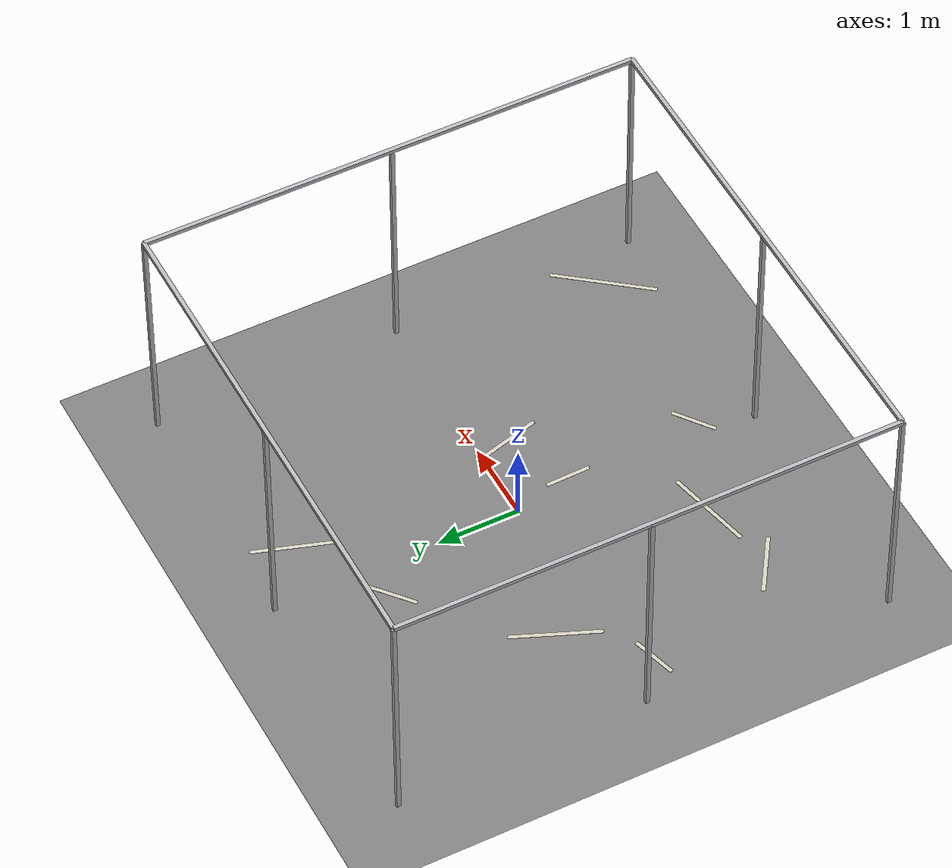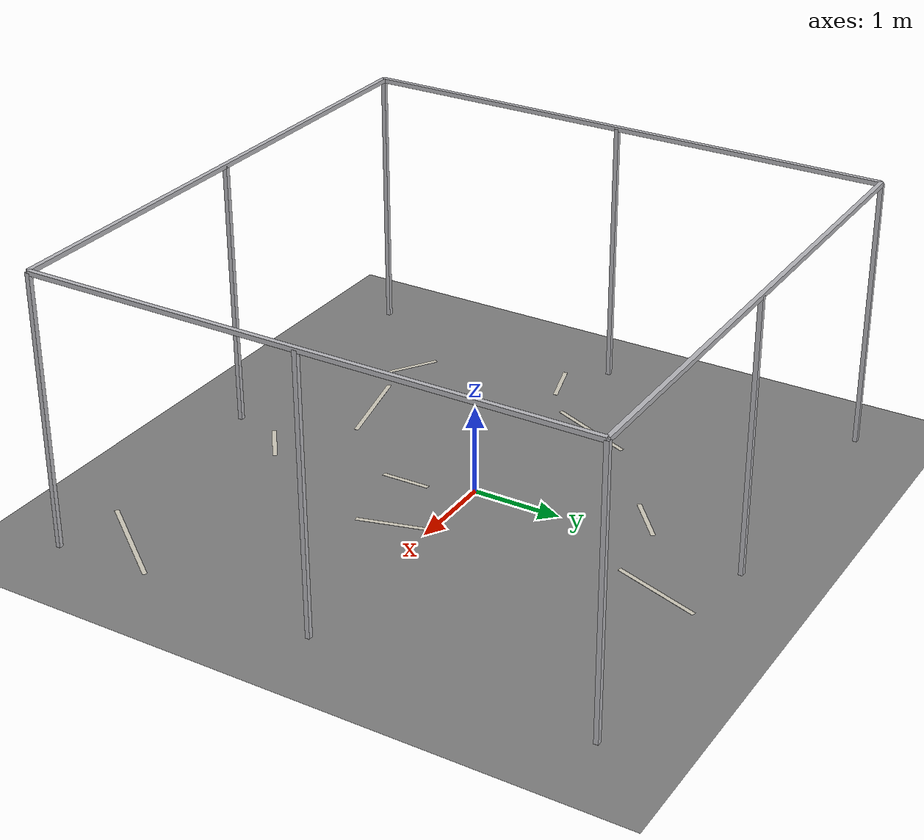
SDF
<sdf version="1.9">
 <world name="ecps295_lowbox_s18">
  <model name="ground_plane">
   <static>true</static>
   <link name="link">
    <collision name="collision">
     <geometry><plane><normal>0 0 1</normal><size>50 50</size></plane></geometry>
    </collision>
    <visual name="visual">
     <geometry><plane><normal>0 0 1</normal><size>50 50</size></plane></geometry>
     <material><ambient>0.5 0.5 0.5 1</ambient><diffuse>0.5 0.5 0.5 1</diffuse></material>
    </visual>
   </link>
  </model>
  <model name="floor_tape">
   <static>true</static>
   <link name="link">
    <visual name="tape0">
     <pose>-0.969 -1.920 0.003 0 0 0.2276</pose>
     <geometry><box><size>1.086 0.050 0.001</size></box></geometry>
     <material><ambient>0.82 0.80 0.74 1</ambient><diffuse>0.82 0.80 0.74 1</diffuse></material>
    </visual>
    <visual name="tape1">
     <pose>0.197 -0.739 0.003 0 0 1.5942</pose>
     <geometry><box><size>0.552 0.050 0.001</size></box></geometry>
     <material><ambient>0.82 0.80 0.74 1</ambient><diffuse>0.82 0.80 0.74 1</diffuse></material>
    </visual>
    <visual name="tape2">
     <pose>-2.544 -0.365 0.003 0 0 0.2850</pose>
     <geometry><box><size>0.563 0.050 0.001</size></box></geometry>
     <material><ambient>0.82 0.80 0.74 1</ambient><diffuse>0.82 0.80 0.74 1</diffuse></material>
    </visual>
    <visual name="tape3">
     <pose>-0.415 1.798 0.003 0 0 0.7013</pose>
     <geometry><box><size>0.611 0.050 0.001</size></box></geometry>
     <material><ambient>0.82 0.80 0.74 1</ambient><diffuse>0.82 0.80 0.74 1</diffuse></material>
    </visual>
    <visual name="tape4">
     <pose>0.701 2.462 0.003 0 0 1.2462</pose>
     <geometry><box><size>1.019 0.050 0.001</size></box></geometry>
     <material><ambient>0.82 0.80 0.74 1</ambient><diffuse>0.82 0.80 0.74 1</diffuse></material>
    </visual>
    <visual name="tape5">
     <pose>2.619 -2.494 0.003 0 0 0.9098</pose>
     <geometry><box><size>1.273 0.050 0.001</size></box></geometry>
     <material><ambient>0.82 0.80 0.74 1</ambient><diffuse>0.82 0.80 0.74 1</diffuse></material>
    </visual>
    <visual name="tape6">
     <pose>-1.957 -2.102 0.003 0 0 2.5639</pose>
     <geometry><box><size>0.778 0.050 0.001</size></box></geometry>
     <material><ambient>0.82 0.80 0.74 1</ambient><diffuse>0.82 0.80 0.74 1</diffuse></material>
    </visual>
    <visual name="tape7">
     <pose>-1.756 0.449 0.003 0 0 1.1699</pose>
     <geometry><box><size>1.075 0.050 0.001</size></box></geometry>
     <material><ambient>0.82 0.80 0.74 1</ambient><diffuse>0.82 0.80 0.74 1</diffuse></material>
    </visual>
    <visual name="tape8">
     <pose>0.263 -2.405 0.003 0 0 0.6470</pose>
     <geometry><box><size>0.554 0.050 0.001</size></box></geometry>
     <material><ambient>0.82 0.80 0.74 1</ambient><diffuse>0.82 0.80 0.74 1</diffuse></material>
    </visual>
    <visual name="tape9">
     <pose>0.992 -0.398 0.003 0 0 1.8396</pose>
     <geometry><box><size>0.783 0.050 0.001</size></box></geometry>
     <material><ambient>0.82 0.80 0.74 1</ambient><diffuse>0.82 0.80 0.74 1</diffuse></material>
    </visual>
   </link>
  </model>
  <model name="cage_frame">
   <static>true</static>
   <link name="link">
    <visual name="post0_0">
     <pose>-3.050 -3.050 1.525 0 0 0.0000</pose>
     <geometry><box><size>0.050 0.050 3.050</size></box></geometry>
     <material><ambient>0.72 0.72 0.74 1</ambient><diffuse>0.72 0.72 0.74 1</diffuse></material>
    </visual>
    <visual name="post0_1">
     <pose>-3.050 0.000 1.525 0 0 0.0000</pose>
     <geometry><box><size>0.050 0.050 3.050</size></box></geometry>
     <material><ambient>0.72 0.72 0.74 1</ambient><diffuse>0.72 0.72 0.74 1</diffuse></material>
    </visual>
    <visual name="post0_2">
     <pose>-3.050 3.050 1.525 0 0 0.0000</pose>
     <geometry><box><size>0.050 0.050 3.050</size></box></geometry>
     <material><ambient>0.72 0.72 0.74 1</ambient><diffuse>0.72 0.72 0.74 1</diffuse></material>
    </visual>
    <visual name="post1_0">
     <pose>0.000 -3.050 1.525 0 0 0.0000</pose>
     <geometry><box><size>0.050 0.050 3.050</size></box></geometry>
     <material><ambient>0.72 0.72 0.74 1</ambient><diffuse>0.72 0.72 0.74 1</diffuse></material>
    </visual>
    <visual name="post1_2">
     <pose>0.000 3.050 1.525 0 0 0.0000</pose>
     <geometry><box><size>0.050 0.050 3.050</size></box></geometry>
     <material><ambient>0.72 0.72 0.74 1</ambient><diffuse>0.72 0.72 0.74 1</diffuse></material>
    </visual>
    <visual name="post2_0">
     <pose>3.050 -3.050 1.525 0 0 0.0000</pose>
     <geometry><box><size>0.050 0.050 3.050</size></box></geometry>
     <material><ambient>0.72 0.72 0.74 1</ambient><diffuse>0.72 0.72 0.74 1</diffuse></material>
    </visual>
    <visual name="post2_1">
     <pose>3.050 0.000 1.525 0 0 0.0000</pose>
     <geometry><box><size>0.050 0.050 3.050</size></box></geometry>
     <material><ambient>0.72 0.72 0.74 1</ambient><diffuse>0.72 0.72 0.74 1</diffuse></material>
    </visual>
    <visual name="post2_2">
     <pose>3.050 3.050 1.525 0 0 0.0000</pose>
     <geometry><box><size>0.050 0.050 3.050</size></box></geometry>
     <material><ambient>0.72 0.72 0.74 1</ambient><diffuse>0.72 0.72 0.74 1</diffuse></material>
    </visual>
    <visual name="railx0">
     <pose>0.000 -3.050 3.050 0 0 0.0000</pose>
     <geometry><box><size>6.100 0.050 0.050</size></box></geometry>
     <material><ambient>0.72 0.72 0.74 1</ambient><diffuse>0.72 0.72 0.74 1</diffuse></material>
    </visual>
    <visual name="raily0">
     <pose>-3.050 0.000 3.050 0 0 0.0000</pose>
     <geometry><box><size>0.050 6.100 0.050</size></box></geometry>
     <material><ambient>0.72 0.72 0.74 1</ambient><diffuse>0.72 0.72 0.74 1</diffuse></material>
    </visual>
    <visual name="railx1">
     <pose>0.000 3.050 3.050 0 0 0.0000</pose>
     <geometry><box><size>6.100 0.050 0.050</size></box></geometry>
     <material><ambient>0.72 0.72 0.74 1</ambient><diffuse>0.72 0.72 0.74 1</diffuse></material>
    </visual>
    <visual name="raily1">
     <pose>3.050 0.000 3.050 0 0 0.0000</pose>
     <geometry><box><size>0.050 6.100 0.050</size></box></geometry>
     <material><ambient>0.72 0.72 0.74 1</ambient><diffuse>0.72 0.72 0.74 1</diffuse></material>
    </visual>
   </link>
  </model>
 </world>
</sdf>
